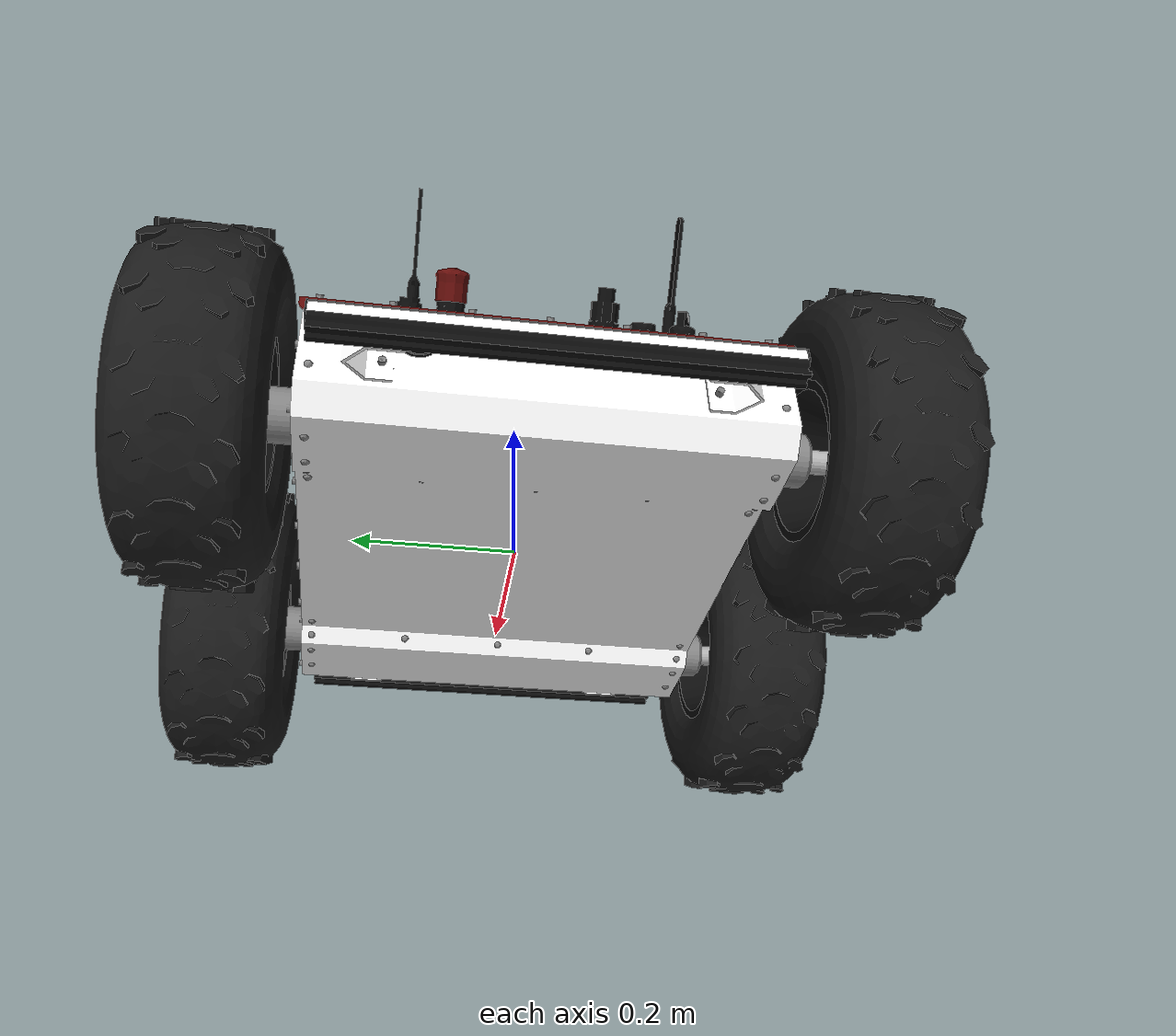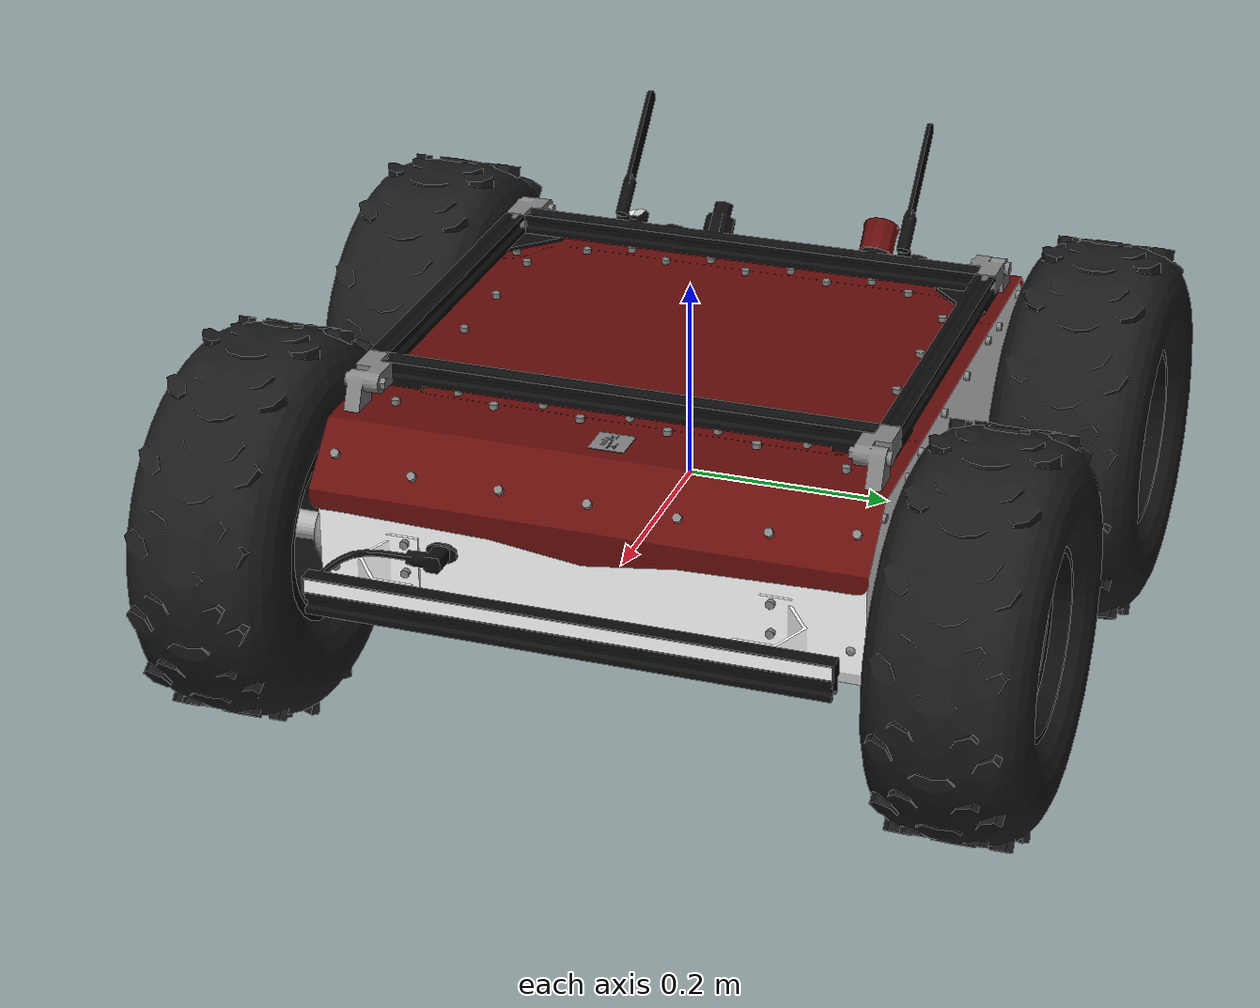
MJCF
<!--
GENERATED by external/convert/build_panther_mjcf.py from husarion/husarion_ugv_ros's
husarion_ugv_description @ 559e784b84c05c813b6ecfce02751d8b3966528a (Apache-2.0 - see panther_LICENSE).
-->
<mujoco model="panther">
  <compiler angle="radian" meshdir="meshes" autolimits="true"/>

  <default>
    <default class="panther">
      <default class="visual">
        <geom type="mesh" contype="0" conaffinity="0" group="2"/>
      </default>
      <default class="collision">
        <geom type="mesh" group="3" rgba="0.6 0.1 0.1 0.35"/>
      </default>
      <default class="wheel_collision">
        <geom type="cylinder" group="3" rgba="0.1 0.1 0.1 0.4" quat="0.7071068 0.7071068 0 0"
              friction="1.0 0.005 0.0001"/>
      </default>
      <default class="wheel">
        <joint axis="0 1 0" damping="0.05" armature="0.01"/>
      </default>
    </default>
  </default>

  <asset>
    <material name="mat_base__m0" rgba="1 1 1 1"/>
    <material name="mat_base__m1" rgba="0.045 0.045 0.045 1"/>
    <material name="mat_base__m2" rgba="0.6308 0.3325 0.0467 1"/>
    <material name="mat_base__m3" rgba="0.5071 0.5071 0.5071 1"/>
    <material name="mat_base__m4" rgba="0.3864 0.0467 0.0356 1"/>
    <material name="mat_base__m5" rgba="0.8 0 0.0024 1"/>
    <material name="mat_fl_wheel__m0" rgba="0.6828 0.6828 0.6828 1"/>
    <material name="mat_fl_wheel__m1" rgba="0.045 0.045 0.045 1"/>
    <material name="mat_fl_wheel__m2" rgba="0.1 0.1 0.1 1"/>
    <material name="mat_fr_wheel__m0" rgba="0.6828 0.6828 0.6828 1"/>
    <material name="mat_fr_wheel__m1" rgba="0.045 0.045 0.045 1"/>
    <material name="mat_fr_wheel__m2" rgba="0.1 0.1 0.1 1"/>
    <material name="mat_rl_wheel__m0" rgba="0.6828 0.6828 0.6828 1"/>
    <material name="mat_rl_wheel__m1" rgba="0.045 0.045 0.045 1"/>
    <material name="mat_rl_wheel__m2" rgba="0.1 0.1 0.1 1"/>
    <material name="mat_rr_wheel__m0" rgba="0.6828 0.6828 0.6828 1"/>
    <material name="mat_rr_wheel__m1" rgba="0.045 0.045 0.045 1"/>
    <material name="mat_rr_wheel__m2" rgba="0.1 0.1 0.1 1"/>
    <mesh file="base__m0.obj"/>
    <mesh file="base__m1.obj"/>
    <mesh file="base__m2.obj"/>
    <mesh file="base__m3.obj"/>
    <mesh file="base__m4.obj"/>
    <mesh file="base__m5.obj"/>
    <mesh file="fl_wheel__m0.obj"/>
    <mesh file="fl_wheel__m1.obj"/>
    <mesh file="fl_wheel__m2.obj"/>
    <mesh file="fr_wheel__m0.obj"/>
    <mesh file="fr_wheel__m1.obj"/>
    <mesh file="fr_wheel__m2.obj"/>
    <mesh file="rl_wheel__m0.obj"/>
    <mesh file="rl_wheel__m1.obj"/>
    <mesh file="rl_wheel__m2.obj"/>
    <mesh file="rr_wheel__m0.obj"/>
    <mesh file="rr_wheel__m1.obj"/>
    <mesh file="rr_wheel__m2.obj"/>
    <mesh file="base_collision.stl"/>
  </asset>

  <worldbody>
    <!-- base_link: the URDF root. body_link sits at the wheel radius above the ground, which is
         where base_footprint puts it. freejoint makes the robot mobile; spawn_robot places it. -->
    <body name="base_link" childclass="panther">
      <freejoint name="base_free"/>
      <site name="base_imu" pos="0 0 0" size="0.01" rgba="0 0 0 0"/>
      <body name="body_link" pos="0 0 0">
        <inertial pos="-0.008 0.01 0.029" mass="43.0" diaginertia="2.630036 2.463509 4.611945"/>
        <geom class="visual" mesh="base__m0" material="mat_base__m0"/>
        <geom class="visual" mesh="base__m1" material="mat_base__m1"/>
        <geom class="visual" mesh="base__m2" material="mat_base__m2"/>
        <geom class="visual" mesh="base__m3" material="mat_base__m3"/>
        <geom class="visual" mesh="base__m4" material="mat_base__m4"/>
        <geom class="visual" mesh="base__m5" material="mat_base__m5"/>
        <geom class="collision" mesh="base_collision"/>
        <body name="fl_wheel_link" pos="0.22 0.3485 0">
          <inertial pos="0.0 0.0 0.0" mass="3.0" diaginertia="0.02251 0.03485 0.02251"/>
          <joint name="fl_wheel_joint" class="wheel"/>
          <geom class="visual" mesh="fl_wheel__m0" material="mat_fl_wheel__m0"/>
          <geom class="visual" mesh="fl_wheel__m1" material="mat_fl_wheel__m1"/>
          <geom class="visual" mesh="fl_wheel__m2" material="mat_fl_wheel__m2"/>
          <geom class="wheel_collision" name="fl_wheel_geom" size="0.1825 0.07"/>
        </body>
        <body name="fr_wheel_link" pos="0.22 -0.3485 0">
          <inertial pos="0.0 0.0 0.0" mass="3.0" diaginertia="0.02251 0.03485 0.02251"/>
          <joint name="fr_wheel_joint" class="wheel"/>
          <geom class="visual" mesh="fr_wheel__m0" material="mat_fr_wheel__m0"/>
          <geom class="visual" mesh="fr_wheel__m1" material="mat_fr_wheel__m1"/>
          <geom class="visual" mesh="fr_wheel__m2" material="mat_fr_wheel__m2"/>
          <geom class="wheel_collision" name="fr_wheel_geom" size="0.1825 0.07"/>
        </body>
        <body name="rl_wheel_link" pos="-0.22 0.3485 0">
          <inertial pos="0.0 0.0 0.0" mass="3.0" diaginertia="0.02251 0.03485 0.02251"/>
          <joint name="rl_wheel_joint" class="wheel"/>
          <geom class="visual" mesh="rl_wheel__m0" material="mat_rl_wheel__m0"/>
          <geom class="visual" mesh="rl_wheel__m1" material="mat_rl_wheel__m1"/>
          <geom class="visual" mesh="rl_wheel__m2" material="mat_rl_wheel__m2"/>
          <geom class="wheel_collision" name="rl_wheel_geom" size="0.1825 0.07"/>
        </body>
        <body name="rr_wheel_link" pos="-0.22 -0.3485 0">
          <inertial pos="0.0 0.0 0.0" mass="3.0" diaginertia="0.02251 0.03485 0.02251"/>
          <joint name="rr_wheel_joint" class="wheel"/>
          <geom class="visual" mesh="rr_wheel__m0" material="mat_rr_wheel__m0"/>
          <geom class="visual" mesh="rr_wheel__m1" material="mat_rr_wheel__m1"/>
          <geom class="visual" mesh="rr_wheel__m2" material="mat_rr_wheel__m2"/>
          <geom class="wheel_collision" name="rr_wheel_geom" size="0.1825 0.07"/>
        </body>
      </body>
    </body>
  </worldbody>

  <contact>
    <pair geom1="fl_wheel_geom" geom2="floor" condim="3" solref="0.02 1" friction="1.0 1.0 0.005 0.0001 0.0001"/>
    <pair geom1="fr_wheel_geom" geom2="floor" condim="3" solref="0.02 1" friction="1.0 1.0 0.005 0.0001 0.0001"/>
    <pair geom1="rl_wheel_geom" geom2="floor" condim="3" solref="0.02 1" friction="1.0 1.0 0.005 0.0001 0.0001"/>
    <pair geom1="rr_wheel_geom" geom2="floor" condim="3" solref="0.02 1" friction="1.0 1.0 0.005 0.0001 0.0001"/>
  </contact>

  <actuator>
    <velocity name="fl_wheel_motor" joint="fl_wheel_joint" kv="120" ctrlrange="-12 12" forcerange="-80 80"/>
    <velocity name="fr_wheel_motor" joint="fr_wheel_joint" kv="120" ctrlrange="-12 12" forcerange="-80 80"/>
    <velocity name="rl_wheel_motor" joint="rl_wheel_joint" kv="120" ctrlrange="-12 12" forcerange="-80 80"/>
    <velocity name="rr_wheel_motor" joint="rr_wheel_joint" kv="120" ctrlrange="-12 12" forcerange="-80 80"/>
  </actuator>

  <keyframe>
    <!-- body_link rides at the wheel radius; spawn a hair above so the wheels settle. -->
    <key name="home" qpos="0 0 0.1825 1 0 0 0  0 0 0 0"/>
  </keyframe>
</mujoco>
